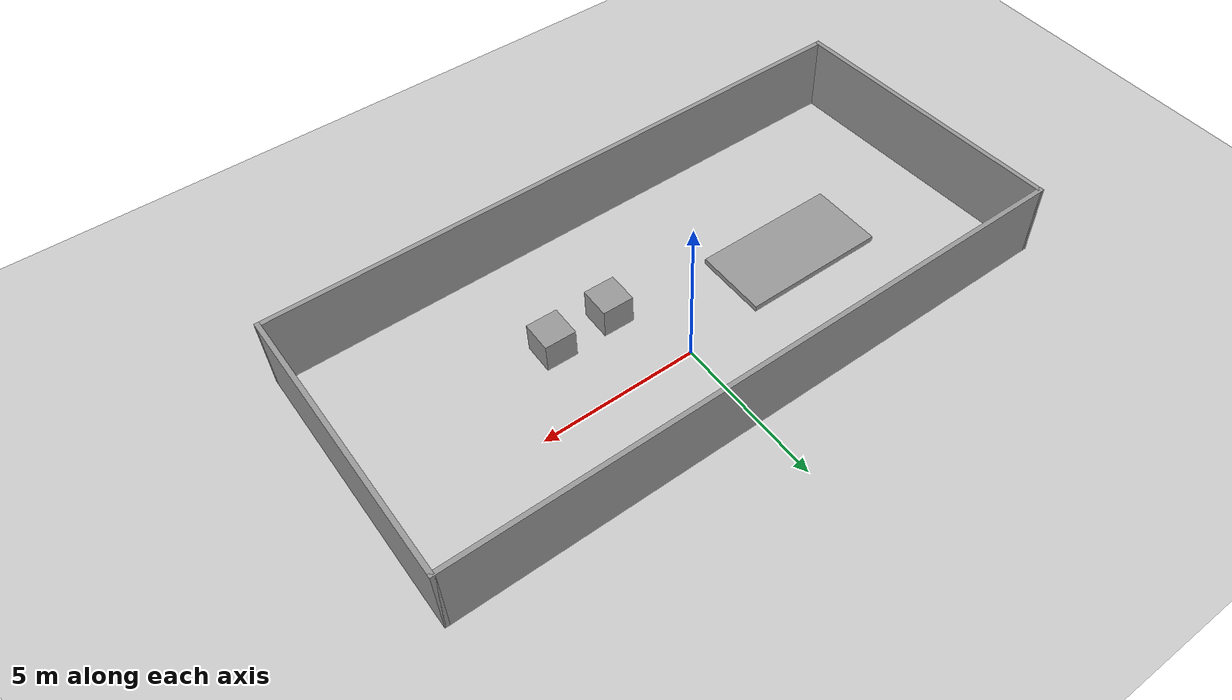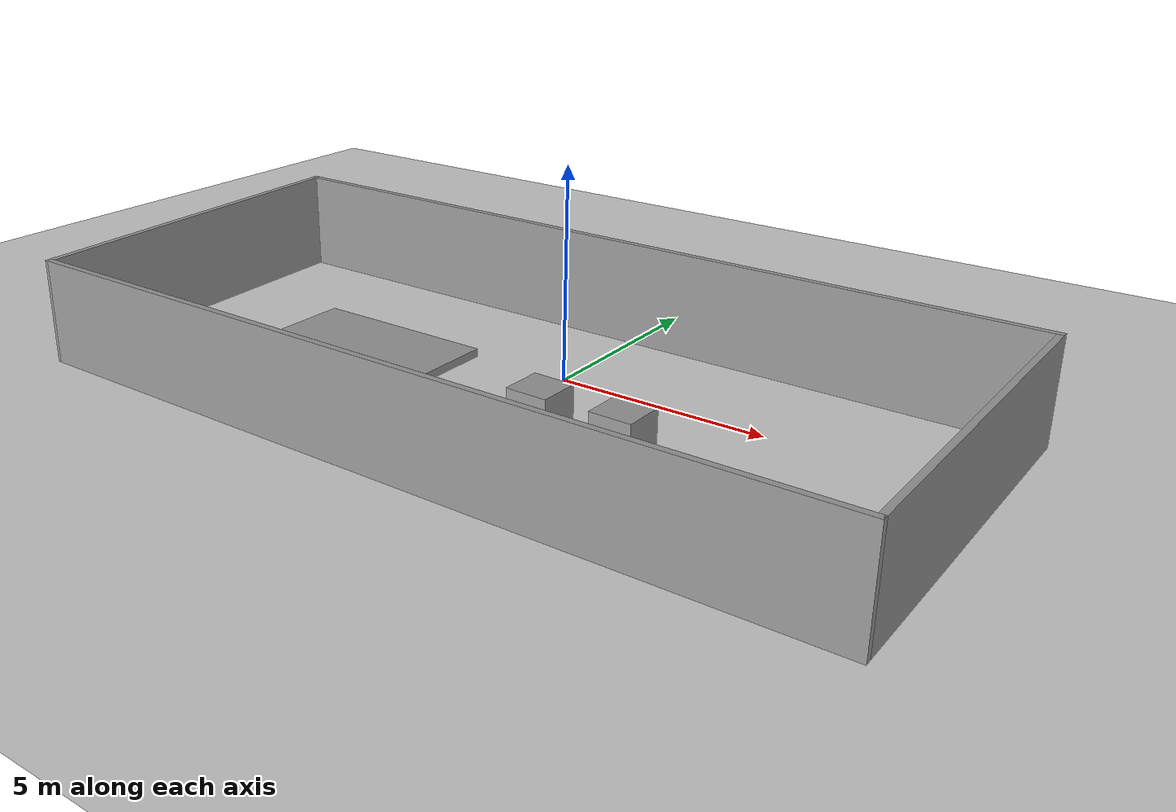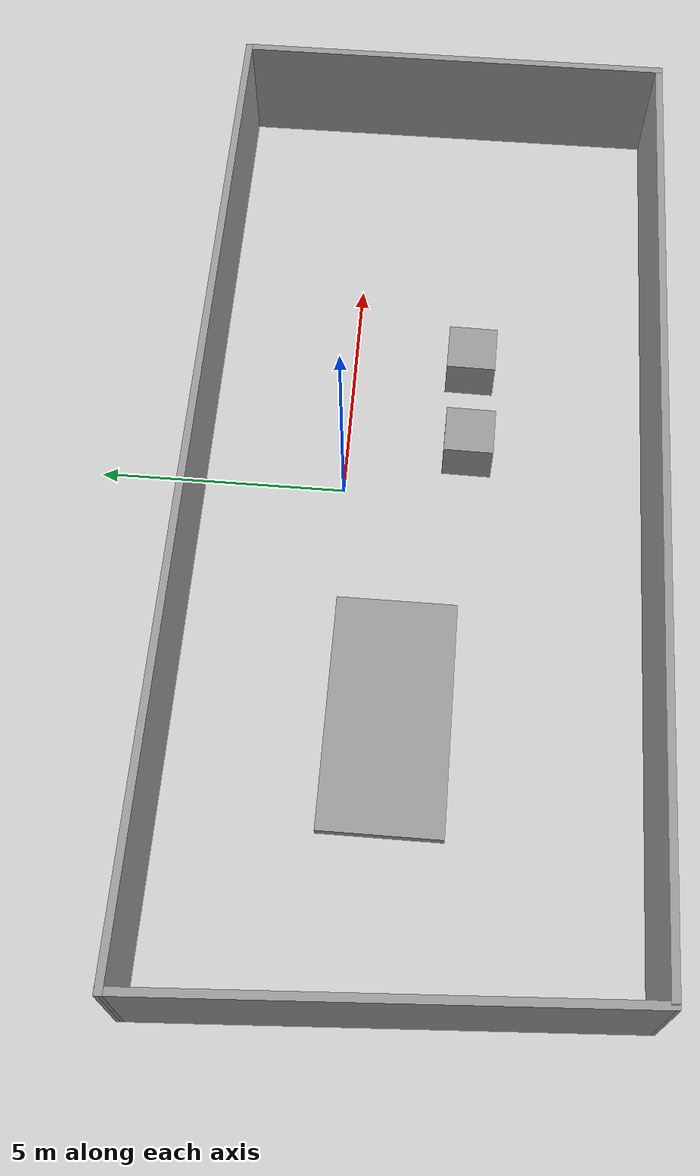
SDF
<sdf version="1.7">
 <world name="default">
  <light name="sun" type="directional">
   <pose>0 0 10 0 -0 0</pose>
   <diffuse>0.8 0.8 0.8 1</diffuse>
   <specular>0.2 0.2 0.2 1</specular>
   <attenuation>
    <range>1000</range>
    <constant>0.9</constant>
    <linear>0.01</linear>
    <quadratic>0.001</quadratic>
   </attenuation>
   <direction>-0.5 0.1 -0.9</direction>
   <spot><inner_angle>0</inner_angle><outer_angle>0</outer_angle><falloff>0</falloff></spot>
  </light>
  <model name="ground_plane">
   <static>1</static>
   <link name="link">
    <collision name="collision">
     <geometry><plane><normal>0 0 1</normal><size>100 100</size></plane></geometry>
     <surface>
      <contact><collide_bitmask>65535</collide_bitmask></contact>
      <friction><ode><mu>100</mu><mu2>50</mu2></ode></friction>
     </surface>
    </collision>
    <visual name="visual">
     <cast_shadows>0</cast_shadows>
     <geometry><plane><normal>0 0 1</normal><size>100 100</size></plane></geometry>
     <material>
      <script><uri>file://media/materials/scripts/gazebo.material</uri><name>Gazebo/Grey</name></script>
     </material>
    </visual>
   </link>
  </model>
  <gravity>0 0 -9.8</gravity>
  <magnetic_field>6e-06 2.3e-05 -4.2e-05</magnetic_field>
  <atmosphere type="adiabatic"/>
  <physics type="ode">
   <max_step_size>0.001</max_step_size>
   <real_time_factor>1</real_time_factor>
   <real_time_update_rate>1000</real_time_update_rate>
  </physics>
  <scene><ambient>0.4 0.4 0.4 1</ambient><background>0.7 0.7 0.7 1</background><shadows>1</shadows></scene>
  <spherical_coordinates>
   <surface_model>EARTH_WGS84</surface_model>
   <latitude_deg>0</latitude_deg>
   <longitude_deg>0</longitude_deg>
   <elevation>0</elevation>
   <heading_deg>0</heading_deg>
  </spherical_coordinates>
  <model name="test">
   <pose>-0.423416 -1.61194 0 0 -0 0</pose>
   <link name="Stairs_3">
    <visual name="Stairs_3_Visual_0">
     <pose>-4.37416 0.347168 0.1 0 -0 0</pose>
     <geometry><box><size>4.67 2.38 0.2</size></box></geometry>
     <material>
      <script><uri>file://media/materials/scripts/gazebo.material</uri><name>Gazebo/Grey</name></script>
      <ambient>1 1 1 1</ambient>
     </material>
     <meta><layer>0</layer></meta>
    </visual>
    <collision name="Stairs_3_Collision_0">
     <geometry><box><size>4.67 2.38 0.2</size></box></geometry>
     <pose>-4.37416 0.347168 0.1 0 -0 0</pose>
    </collision>
   </link>
   <link name="Wall_6">
    <collision name="Wall_6_Collision">
     <geometry><box><size>20.5 0.15 2.5</size></box></geometry>
     <pose>0 0 1.25 0 -0 0</pose>
    </collision>
    <visual name="Wall_6_Visual">
     <pose>0 0 1.25 0 -0 0</pose>
     <geometry><box><size>20.5 0.15 2.5</size></box></geometry>
     <material>
      <script><uri>file://media/materials/scripts/gazebo.material</uri><name>Gazebo/Grey</name></script>
      <ambient>1 1 1 1</ambient>
     </material>
     <meta><layer>0</layer></meta>
    </visual>
    <pose>0.002001 4.55 0 0 -0 0</pose>
   </link>
   <link name="Wall_7">
    <collision name="Wall_7_Collision">
     <geometry><box><size>9.25 0.15 2.5</size></box></geometry>
     <pose>0 0 1.25 0 -0 0</pose>
    </collision>
    <visual name="Wall_7_Visual">
     <pose>0 0 1.25 0 -0 0</pose>
     <geometry><box><size>9.25 0.15 2.5</size></box></geometry>
     <material>
      <script><uri>file://media/materials/scripts/gazebo.material</uri><name>Gazebo/Grey</name></script>
      <ambient>1 1 1 1</ambient>
     </material>
     <meta><layer>0</layer></meta>
    </visual>
    <pose>10.177 -0 0 0 -0 -1.5708</pose>
   </link>
   <link name="Wall_8">
    <collision name="Wall_8_Collision">
     <geometry><box><size>20 0.15 2.5</size></box></geometry>
     <pose>0 0 1.25 0 -0 0</pose>
    </collision>
    <visual name="Wall_8_Visual">
     <pose>0 0 1.25 0 -0 0</pose>
     <geometry><box><size>20 0.15 2.5</size></box></geometry>
     <material>
      <script><uri>file://media/materials/scripts/gazebo.material</uri><name>Gazebo/Grey</name></script>
      <ambient>1 1 1 1</ambient>
     </material>
     <meta><layer>0</layer></meta>
    </visual>
    <pose>0.252001 -4.55 0 0 -0 3.14159</pose>
   </link>
   <link name="Wall_9">
    <collision name="Wall_9_Collision">
     <geometry><box><size>9.26373 0.15 2.5</size></box></geometry>
     <pose>0 0 1.25 0 -0 0</pose>
    </collision>
    <visual name="Wall_9_Visual">
     <pose>0 0 1.25 0 -0 0</pose>
     <geometry><box><size>9.26373 0.15 2.5</size></box></geometry>
     <material>
      <script><uri>file://media/materials/scripts/gazebo.material</uri><name>Gazebo/Grey</name></script>
      <ambient>1 1 1 1</ambient>
     </material>
     <meta><layer>0</layer></meta>
    </visual>
    <pose>-9.923 -0 0 0 -0 1.62569</pose>
   </link>
   <static>1</static>
  </model>
  <model name="unit_box">
   <pose>1.07705 -2.48307 0.5 0 -0 -0.015073</pose>
   <link name="link">
    <inertial>
     <mass>1</mass>
     <inertia>
      <ixx>0.166667</ixx>
      <ixy>0</ixy>
      <ixz>0</ixz>
      <iyy>0.166667</iyy>
      <iyz>0</iyz>
      <izz>0.166667</izz>
     </inertia>
    </inertial>
    <collision name="collision"><geometry><box><size>1 1 1</size></box></geometry></collision>
    <visual name="visual">
     <geometry><box><size>1 1 1</size></box></geometry>
     <material>
      <script><name>Gazebo/Grey</name><uri>file://media/materials/scripts/gazebo.material</uri></script>
     </material>
    </visual>
   </link>
  </model>
  <model name="unit_box_0">
   <pose>3.0781 -2.44098 0.5 0 0 -0.015244</pose>
   <link name="link">
    <inertial>
     <mass>1</mass>
     <inertia>
      <ixx>0.166667</ixx>
      <ixy>0</ixy>
      <ixz>0</ixz>
      <iyy>0.166667</iyy>
      <iyz>0</iyz>
      <izz>0.166667</izz>
     </inertia>
    </inertial>
    <collision name="collision"><geometry><box><size>1 1 1</size></box></geometry></collision>
    <visual name="visual">
     <geometry><box><size>1 1 1</size></box></geometry>
     <material>
      <script><name>Gazebo/Grey</name><uri>file://media/materials/scripts/gazebo.material</uri></script>
     </material>
    </visual>
   </link>
  </model>
 </world>
</sdf>
